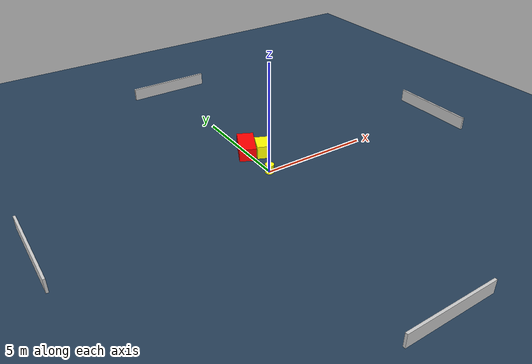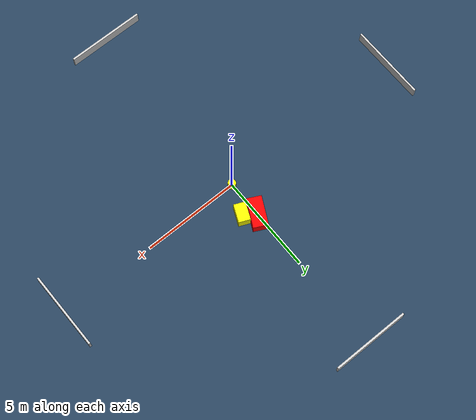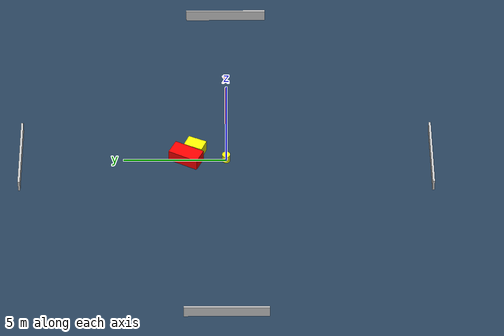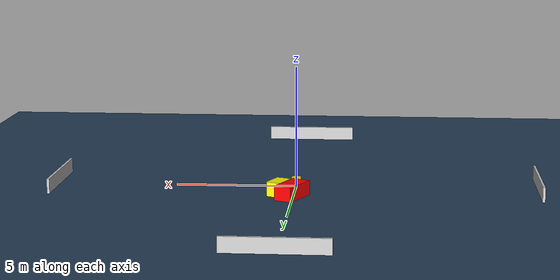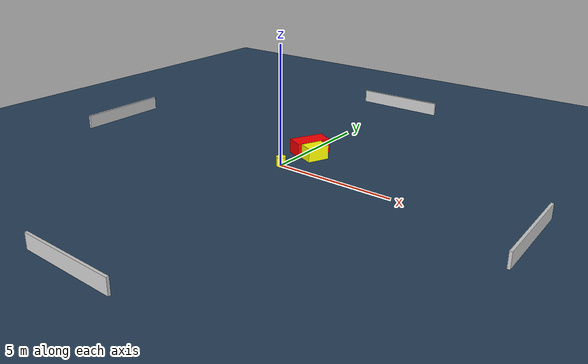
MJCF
<?xml version="1.0" ?>
<mujoco model="generated_environment">
  <option timestep="0.01" integrator="RK4" cone="elliptic"/>
  <default>
    <geom density="1"/>
  </default>
  <asset>
    <texture builtin="gradient" height="3072" name="skybox" rgb1="0.3 0.5 0.7" rgb2="0 0 0" type="skybox" width="512"/>
    <texture builtin="checker" height="300" name="groundplane" rgb1="0.2 0.3 0.4" rgb2="0.1 0.2 0.3" type="2d" width="300"/>
    <material name="groundplane" reflectance="0.2" texrepeat="5 5" texture="groundplane"/>
  </asset>
  <worldbody>
    <light dir="0 0 -1" directional="true" pos="0 0 1.5"/>
    <geom condim="3" friction="0.5 0.005 0.001" material="groundplane" name="floor" pos="0 0 0" size="0 0 0.05" type="plane"/>
    <body name="walls">
      <geom name="wall_1" condim="4" pos="-10.0 0.0 0.3" rgba="0.800000011920929 0.800000011920929 0.800000011920929 1.0" size="0.05 2.0 0.3" type="box"/>
      <geom name="wall_2" condim="4" pos="10.0 0.0 0.3" rgba="0.800000011920929 0.800000011920929 0.800000011920929 1.0" size="0.05 2.0 0.3" type="box"/>
      <geom name="wall_3" condim="4" pos="0.0 -10.0 0.3" rgba="0.800000011920929 0.800000011920929 0.800000011920929 1.0" size="2.0 0.05 0.3" type="box"/>
      <geom name="wall_4" condim="4" pos="0.0 10.0 0.3" rgba="0.800000011920929 0.800000011920929 0.800000011920929 1.0" size="2.0 0.05 0.3" type="box"/>
    </body>
    <body name="robot">
      <joint name="joint_x" type="slide" pos="0 0 0" axis="1 0 0"/>
      <joint name="joint_y" type="slide" pos="0 0 0" axis="0 1 0"/>
      <geom name="robot" type="cylinder" pos="0.0 0.0 0.2" size="0.2 0.2 0.0" mass="5.0" friction="1.0 0.005 0.0001" condim="4" rgba="1.0 1.0 0.0 1.0"/>
    </body>
    <body name="obstacle_1_movable">
      <geom name="obstacle_1_movable" condim="4" pos="0.6126918614669209 1.5040160928234083 0.3" euler="0 0 66.41660925156225" friction="0.0 0.005 0.001" rgba="1.0 1.0 0.0 1.0" size="0.46810388979308454 0.3040469291660083 0.3" type="box" mass="0.1"/>
      <joint type="free"/>
    </body>
    <body name="obstacle_2_static">
      <geom name="obstacle_2_static" condim="4" pos="0.0372045926961147 1.9488318066223453 0.3" euler="0 0 153.45911711153914" friction="0.0 0.005 0.001" rgba="1.0 0.0 0.0 1.0" size="0.38179102309031926 0.7558117503625617 0.3" type="box"/>
    </body>
  </worldbody>
  <actuator>
    <motor name="actuator_x" joint="joint_x" gear="1" ctrlrange="-1 1"/>
    <motor name="actuator_y" joint="joint_y" gear="1" ctrlrange="-1 1"/>
  </actuator>
</mujoco>
